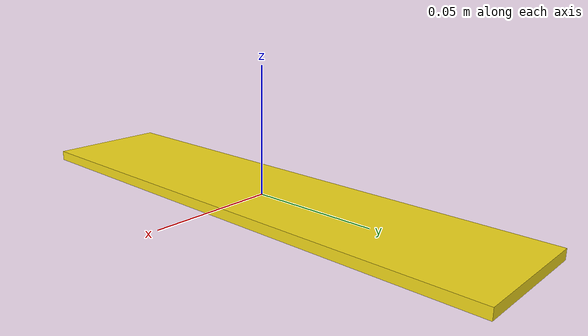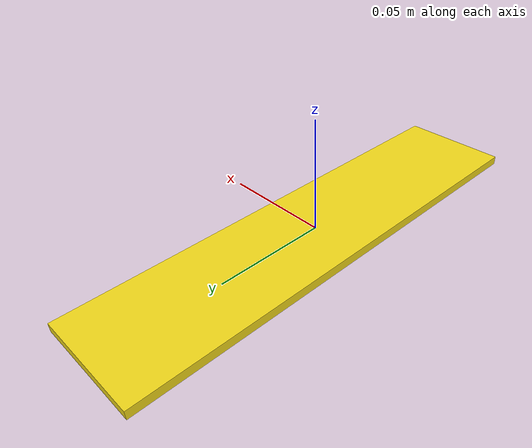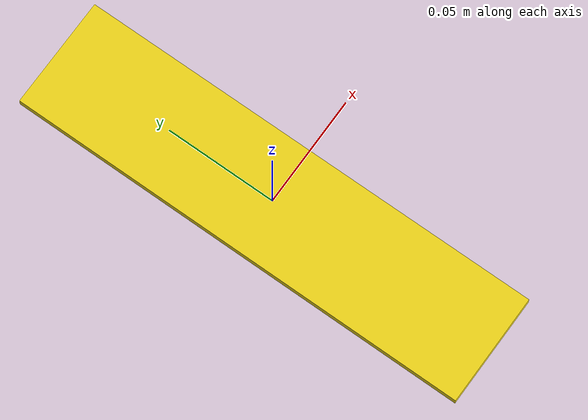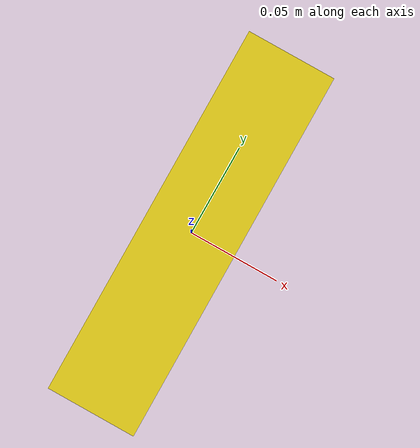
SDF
<?xml version="1.0"?>
<sdf version="1.9">
  <model name="drop_marker">
    <static>true</static>
    <link name="link">
      <visual name="visual">
        <geometry><box><size>0.05 0.21 0.004</size></box></geometry>
        <material>
          <ambient>0.95 0.85 0.1 1</ambient>
          <diffuse>0.95 0.85 0.1 1</diffuse>
        </material>
      </visual>
    </link>
  </model>
</sdf>
